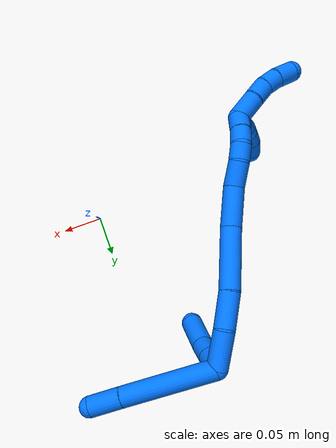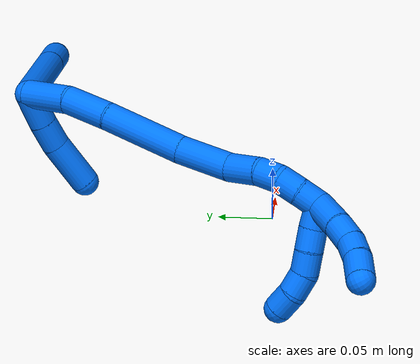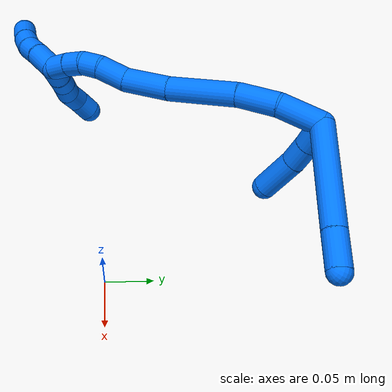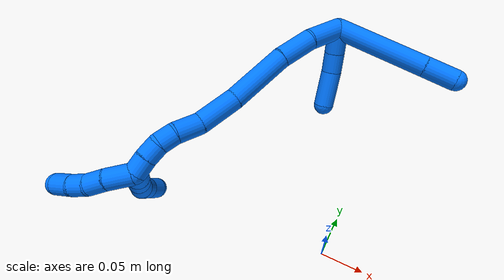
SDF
<sdf version="1.7">
 <world name="default">
  <model name="14">
   <static>0</static>
   <link name="14">
    <collision name="collision-cylinder-e_1_2_8">
     <pose>-0.023493 0.050039 0.008525 -1.40206 -0.433465 0.36751</pose>
     <geometry><cylinder><radius>0.0125</radius><length>0.111866</length></cylinder></geometry>
     <surface>
      <friction><ode><mu>1.16</mu><mu2>1.16</mu2><slip1>0</slip1><slip2>0</slip2></ode></friction>
      <contact><ode><kp>1e+06</kp><kd>1</kd><max_vel>0</max_vel><min_depth>0.001</min_depth></ode></contact>
     </surface>
    </collision>
    <visual name="visual-cylinder-e_1_2_8">
     <pose>-0.023493 0.050039 0.008525 -1.40206 -0.433465 0.36751</pose>
     <geometry><cylinder><radius>0.0125</radius><length>0.111866</length></cylinder></geometry>
     <material><ambient>0 0.462745 1 1</ambient></material>
    </visual>
    <collision name="collision-cylinder-e_2_8_6">
     <pose>-0.055069 0.117042 0.020284 -1.38235 -0.437771 0.363999</pose>
     <geometry><cylinder><radius>0.0125</radius><length>0.038134</length></cylinder></geometry>
     <surface>
      <friction><ode><mu>1.16</mu><mu2>1.16</mu2><slip1>0</slip1><slip2>0</slip2></ode></friction>
      <contact><ode><kp>1e+06</kp><kd>1</kd><max_vel>0</max_vel><min_depth>0.001</min_depth></ode></contact>
     </surface>
    </collision>
    <visual name="visual-cylinder-e_2_8_6">
     <pose>-0.055069 0.117042 0.020284 -1.38235 -0.437771 0.363999</pose>
     <geometry><cylinder><radius>0.0125</radius><length>0.038134</length></cylinder></geometry>
     <material><ambient>0 0.462745 1 1</ambient></material>
    </visual>
    <collision name="collision-cylinder-e_1_2_9">
     <pose>-0.01446 -0.003356 0.002934 0.852422 -1.27178 -0.646793</pose>
     <geometry><cylinder><radius>0.0125</radius><length>0.030264</length></cylinder></geometry>
     <surface>
      <friction><ode><mu>1.16</mu><mu2>1.16</mu2><slip1>0</slip1><slip2>0</slip2></ode></friction>
      <contact><ode><kp>1e+06</kp><kd>1</kd><max_vel>0</max_vel><min_depth>0.001</min_depth></ode></contact>
     </surface>
    </collision>
    <visual name="visual-cylinder-e_1_2_9">
     <pose>-0.01446 -0.003356 0.002934 0.852422 -1.27178 -0.646793</pose>
     <geometry><cylinder><radius>0.0125</radius><length>0.030264</length></cylinder></geometry>
     <material><ambient>0 0.462745 1 1</ambient></material>
    </visual>
    <collision name="collision-cylinder-e_2_9_10">
     <pose>-0.041004 -0.009399 0.007375 1.05949 -1.32117 -0.854033</pose>
     <geometry><cylinder><radius>0.0125</radius><length>0.024939</length></cylinder></geometry>
     <surface>
      <friction><ode><mu>1.16</mu><mu2>1.16</mu2><slip1>0</slip1><slip2>0</slip2></ode></friction>
      <contact><ode><kp>1e+06</kp><kd>1</kd><max_vel>0</max_vel><min_depth>0.001</min_depth></ode></contact>
     </surface>
    </collision>
    <visual name="visual-cylinder-e_2_9_10">
     <pose>-0.041004 -0.009399 0.007375 1.05949 -1.32117 -0.854033</pose>
     <geometry><cylinder><radius>0.0125</radius><length>0.024939</length></cylinder></geometry>
     <material><ambient>0 0.462745 1 1</ambient></material>
    </visual>
    <collision name="collision-cylinder-e_3_10_5">
     <pose>-0.074866 -0.01728 0.008259 1.69027 -1.33503 -1.45285</pose>
     <geometry><cylinder><radius>0.0125</radius><length>0.044797</length></cylinder></geometry>
     <surface>
      <friction><ode><mu>1.16</mu><mu2>1.16</mu2><slip1>0</slip1><slip2>0</slip2></ode></friction>
      <contact><ode><kp>1e+06</kp><kd>1</kd><max_vel>0</max_vel><min_depth>0.001</min_depth></ode></contact>
     </surface>
    </collision>
    <visual name="visual-cylinder-e_3_10_5">
     <pose>-0.074866 -0.01728 0.008259 1.69027 -1.33503 -1.45285</pose>
     <geometry><cylinder><radius>0.0125</radius><length>0.044797</length></cylinder></geometry>
     <material><ambient>0 0.462745 1 1</ambient></material>
    </visual>
    <collision name="collision-cylinder-e_1_2_11">
     <pose>-0.005548 -0.011106 -0.018452 2.59979 -0.252141 -0.85625</pose>
     <geometry><cylinder><radius>0.0125</radius><length>0.044479</length></cylinder></geometry>
     <surface>
      <friction><ode><mu>1.16</mu><mu2>1.16</mu2><slip1>0</slip1><slip2>0</slip2></ode></friction>
      <contact><ode><kp>1e+06</kp><kd>1</kd><max_vel>0</max_vel><min_depth>0.001</min_depth></ode></contact>
     </surface>
    </collision>
    <visual name="visual-cylinder-e_1_2_11">
     <pose>-0.005548 -0.011106 -0.018452 2.59979 -0.252141 -0.85625</pose>
     <geometry><cylinder><radius>0.0125</radius><length>0.044479</length></cylinder></geometry>
     <material><ambient>0 0.462745 1 1</ambient></material>
    </visual>
    <collision name="collision-cylinder-e_2_11_12">
     <pose>-0.020498 -0.034025 -0.051777 2.47037 -0.459601 -1.18153</pose>
     <geometry><cylinder><radius>0.0125</radius><length>0.042386</length></cylinder></geometry>
     <surface>
      <friction><ode><mu>1.16</mu><mu2>1.16</mu2><slip1>0</slip1><slip2>0</slip2></ode></friction>
      <contact><ode><kp>1e+06</kp><kd>1</kd><max_vel>0</max_vel><min_depth>0.001</min_depth></ode></contact>
     </surface>
    </collision>
    <visual name="visual-cylinder-e_2_11_12">
     <pose>-0.020498 -0.034025 -0.051777 2.47037 -0.459601 -1.18153</pose>
     <geometry><cylinder><radius>0.0125</radius><length>0.042386</length></cylinder></geometry>
     <material><ambient>0 0.462745 1 1</ambient></material>
    </visual>
    <collision name="collision-cylinder-e_3_12_13">
     <pose>-0.050878 -0.063906 -0.09096 2.50245 -0.605773 -1.51357</pose>
     <geometry><cylinder><radius>0.0125</radius><length>0.07369</length></cylinder></geometry>
     <surface>
      <friction><ode><mu>1.16</mu><mu2>1.16</mu2><slip1>0</slip1><slip2>0</slip2></ode></friction>
      <contact><ode><kp>1e+06</kp><kd>1</kd><max_vel>0</max_vel><min_depth>0.001</min_depth></ode></contact>
     </surface>
    </collision>
    <visual name="visual-cylinder-e_3_12_13">
     <pose>-0.050878 -0.063906 -0.09096 2.50245 -0.605773 -1.51357</pose>
     <geometry><cylinder><radius>0.0125</radius><length>0.07369</length></cylinder></geometry>
     <material><ambient>0 0.462745 1 1</ambient></material>
    </visual>
    <collision name="collision-cylinder-e_4_13_14">
     <pose>-0.083252 -0.094035 -0.132943 2.54268 -0.489354 -1.36006</pose>
     <geometry><cylinder><radius>0.0125</radius><length>0.048484</length></cylinder></geometry>
     <surface>
      <friction><ode><mu>1.16</mu><mu2>1.16</mu2><slip1>0</slip1><slip2>0</slip2></ode></friction>
      <contact><ode><kp>1e+06</kp><kd>1</kd><max_vel>0</max_vel><min_depth>0.001</min_depth></ode></contact>
     </surface>
    </collision>
    <visual name="visual-cylinder-e_4_13_14">
     <pose>-0.083252 -0.094035 -0.132943 2.54268 -0.489354 -1.36006</pose>
     <geometry><cylinder><radius>0.0125</radius><length>0.048484</length></cylinder></geometry>
     <material><ambient>0 0.462745 1 1</ambient></material>
    </visual>
    <collision name="collision-cylinder-e_5_14_15">
     <pose>-0.097975 -0.113732 -0.16333 2.60083 -0.220731 -0.760694</pose>
     <geometry><cylinder><radius>0.0125</radius><length>0.030399</length></cylinder></geometry>
     <surface>
      <friction><ode><mu>1.16</mu><mu2>1.16</mu2><slip1>0</slip1><slip2>0</slip2></ode></friction>
      <contact><ode><kp>1e+06</kp><kd>1</kd><max_vel>0</max_vel><min_depth>0.001</min_depth></ode></contact>
     </surface>
    </collision>
    <visual name="visual-cylinder-e_5_14_15">
     <pose>-0.097975 -0.113732 -0.16333 2.60083 -0.220731 -0.760694</pose>
     <geometry><cylinder><radius>0.0125</radius><length>0.030399</length></cylinder></geometry>
     <material><ambient>0 0.462745 1 1</ambient></material>
    </visual>
    <collision name="collision-cylinder-e_6_15_16">
     <pose>-0.105742 -0.12671 -0.18337 2.51145 -0.455261 -1.23578</pose>
     <geometry><cylinder><radius>0.0125</radius><length>0.020191</length></cylinder></geometry>
     <surface>
      <friction><ode><mu>1.16</mu><mu2>1.16</mu2><slip1>0</slip1><slip2>0</slip2></ode></friction>
      <contact><ode><kp>1e+06</kp><kd>1</kd><max_vel>0</max_vel><min_depth>0.001</min_depth></ode></contact>
     </surface>
    </collision>
    <visual name="visual-cylinder-e_6_15_16">
     <pose>-0.105742 -0.12671 -0.18337 2.51145 -0.455261 -1.23578</pose>
     <geometry><cylinder><radius>0.0125</radius><length>0.020191</length></cylinder></geometry>
     <material><ambient>0 0.462745 1 1</ambient></material>
    </visual>
    <collision name="collision-cylinder-e_7_16_17">
     <pose>-0.117049 -0.137095 -0.195935 2.37535 -0.756926 -1.5573</pose>
     <geometry><cylinder><radius>0.0125</radius><length>0.020004</length></cylinder></geometry>
     <surface>
      <friction><ode><mu>1.16</mu><mu2>1.16</mu2><slip1>0</slip1><slip2>0</slip2></ode></friction>
      <contact><ode><kp>1e+06</kp><kd>1</kd><max_vel>0</max_vel><min_depth>0.001</min_depth></ode></contact>
     </surface>
    </collision>
    <visual name="visual-cylinder-e_7_16_17">
     <pose>-0.117049 -0.137095 -0.195935 2.37535 -0.756926 -1.5573</pose>
     <geometry><cylinder><radius>0.0125</radius><length>0.020004</length></cylinder></geometry>
     <material><ambient>0 0.462745 1 1</ambient></material>
    </visual>
    <collision name="collision-cylinder-e_8_17_1">
     <pose>-0.13174 -0.146551 -0.205973 2.39795 -0.875943 -1.75286</pose>
     <geometry><cylinder><radius>0.0125</radius><length>0.020367</length></cylinder></geometry>
     <surface>
      <friction><ode><mu>1.16</mu><mu2>1.16</mu2><slip1>0</slip1><slip2>0</slip2></ode></friction>
      <contact><ode><kp>1e+06</kp><kd>1</kd><max_vel>0</max_vel><min_depth>0.001</min_depth></ode></contact>
     </surface>
    </collision>
    <visual name="visual-cylinder-e_8_17_1">
     <pose>-0.13174 -0.146551 -0.205973 2.39795 -0.875943 -1.75286</pose>
     <geometry><cylinder><radius>0.0125</radius><length>0.020367</length></cylinder></geometry>
     <material><ambient>0 0.462745 1 1</ambient></material>
    </visual>
    <collision name="collision-cylinder-e_1_1_18">
     <pose>-0.145084 -0.155805 -0.203983 0.619291 -0.584896 -0.192061</pose>
     <geometry><cylinder><radius>0.0125</radius><length>0.02</length></cylinder></geometry>
     <surface>
      <friction><ode><mu>1.16</mu><mu2>1.16</mu2><slip1>0</slip1><slip2>0</slip2></ode></friction>
      <contact><ode><kp>1e+06</kp><kd>1</kd><max_vel>0</max_vel><min_depth>0.001</min_depth></ode></contact>
     </surface>
    </collision>
    <visual name="visual-cylinder-e_1_1_18">
     <pose>-0.145084 -0.155805 -0.203983 0.619291 -0.584896 -0.192061</pose>
     <geometry><cylinder><radius>0.0125</radius><length>0.02</length></cylinder></geometry>
     <material><ambient>0 0.462745 1 1</ambient></material>
    </visual>
    <collision name="collision-cylinder-e_2_18_19">
     <pose>-0.156152 -0.166422 -0.191206 0.767573 -0.588046 -0.243339</pose>
     <geometry><cylinder><radius>0.0125</radius><length>0.02</length></cylinder></geometry>
     <surface>
      <friction><ode><mu>1.16</mu><mu2>1.16</mu2><slip1>0</slip1><slip2>0</slip2></ode></friction>
      <contact><ode><kp>1e+06</kp><kd>1</kd><max_vel>0</max_vel><min_depth>0.001</min_depth></ode></contact>
     </surface>
    </collision>
    <visual name="visual-cylinder-e_2_18_19">
     <pose>-0.156152 -0.166422 -0.191206 0.767573 -0.588046 -0.243339</pose>
     <geometry><cylinder><radius>0.0125</radius><length>0.02</length></cylinder></geometry>
     <material><ambient>0 0.462745 1 1</ambient></material>
    </visual>
    <collision name="collision-cylinder-e_3_19_20">
     <pose>-0.167736 -0.177102 -0.178932 0.662259 -0.648052 -0.229913</pose>
     <geometry><cylinder><radius>0.0125</radius><length>0.02</length></cylinder></geometry>
     <surface>
      <friction><ode><mu>1.16</mu><mu2>1.16</mu2><slip1>0</slip1><slip2>0</slip2></ode></friction>
      <contact><ode><kp>1e+06</kp><kd>1</kd><max_vel>0</max_vel><min_depth>0.001</min_depth></ode></contact>
     </surface>
    </collision>
    <visual name="visual-cylinder-e_3_19_20">
     <pose>-0.167736 -0.177102 -0.178932 0.662259 -0.648052 -0.229913</pose>
     <geometry><cylinder><radius>0.0125</radius><length>0.02</length></cylinder></geometry>
     <material><ambient>0 0.462745 1 1</ambient></material>
    </visual>
    <collision name="collision-cylinder-e_4_20_21">
     <pose>-0.177322 -0.185975 -0.164181 0.438687 -0.362866 -0.081748</pose>
     <geometry><cylinder><radius>0.0125</radius><length>0.02</length></cylinder></geometry>
     <surface>
      <friction><ode><mu>1.16</mu><mu2>1.16</mu2><slip1>0</slip1><slip2>0</slip2></ode></friction>
      <contact><ode><kp>1e+06</kp><kd>1</kd><max_vel>0</max_vel><min_depth>0.001</min_depth></ode></contact>
     </surface>
    </collision>
    <visual name="visual-cylinder-e_4_20_21">
     <pose>-0.177322 -0.185975 -0.164181 0.438687 -0.362866 -0.081748</pose>
     <geometry><cylinder><radius>0.0125</radius><length>0.02</length></cylinder></geometry>
     <material><ambient>0 0.462745 1 1</ambient></material>
    </visual>
    <collision name="collision-cylinder-e_5_21_4">
     <pose>-0.184135 -0.191133 -0.14634 0.12593 -0.332389 -0.021151</pose>
     <geometry><cylinder><radius>0.0125</radius><length>0.02</length></cylinder></geometry>
     <surface>
      <friction><ode><mu>1.16</mu><mu2>1.16</mu2><slip1>0</slip1><slip2>0</slip2></ode></friction>
      <contact><ode><kp>1e+06</kp><kd>1</kd><max_vel>0</max_vel><min_depth>0.001</min_depth></ode></contact>
     </surface>
    </collision>
    <visual name="visual-cylinder-e_5_21_4">
     <pose>-0.184135 -0.191133 -0.14634 0.12593 -0.332389 -0.021151</pose>
     <geometry><cylinder><radius>0.0125</radius><length>0.02</length></cylinder></geometry>
     <material><ambient>0 0.462745 1 1</ambient></material>
    </visual>
    <collision name="collision-cylinder-e_1_1_22">
     <pose>-0.142549 -0.165165 -0.217744 2.02717 -0.18655 -0.298047</pose>
     <geometry><cylinder><radius>0.0125</radius><length>0.032197</length></cylinder></geometry>
     <surface>
      <friction><ode><mu>1.16</mu><mu2>1.16</mu2><slip1>0</slip1><slip2>0</slip2></ode></friction>
      <contact><ode><kp>1e+06</kp><kd>1</kd><max_vel>0</max_vel><min_depth>0.001</min_depth></ode></contact>
     </surface>
    </collision>
    <visual name="visual-cylinder-e_1_1_22">
     <pose>-0.142549 -0.165165 -0.217744 2.02717 -0.18655 -0.298047</pose>
     <geometry><cylinder><radius>0.0125</radius><length>0.032197</length></cylinder></geometry>
     <material><ambient>0 0.462745 1 1</ambient></material>
    </visual>
    <collision name="collision-cylinder-e_2_22_23">
     <pose>-0.148589 -0.189327 -0.228691 1.95052 -0.277493 -0.406479</pose>
     <geometry><cylinder><radius>0.0125</radius><length>0.022304</length></cylinder></geometry>
     <surface>
      <friction><ode><mu>1.16</mu><mu2>1.16</mu2><slip1>0</slip1><slip2>0</slip2></ode></friction>
      <contact><ode><kp>1e+06</kp><kd>1</kd><max_vel>0</max_vel><min_depth>0.001</min_depth></ode></contact>
     </surface>
    </collision>
    <visual name="visual-cylinder-e_2_22_23">
     <pose>-0.148589 -0.189327 -0.228691 1.95052 -0.277493 -0.406479</pose>
     <geometry><cylinder><radius>0.0125</radius><length>0.022304</length></cylinder></geometry>
     <material><ambient>0 0.462745 1 1</ambient></material>
    </visual>
    <collision name="collision-cylinder-e_3_23_24">
     <pose>-0.152788 -0.209318 -0.234666 1.76762 -0.111334 -0.135658</pose>
     <geometry><cylinder><radius>0.0125</radius><length>0.020582</length></cylinder></geometry>
     <surface>
      <friction><ode><mu>1.16</mu><mu2>1.16</mu2><slip1>0</slip1><slip2>0</slip2></ode></friction>
      <contact><ode><kp>1e+06</kp><kd>1</kd><max_vel>0</max_vel><min_depth>0.001</min_depth></ode></contact>
     </surface>
    </collision>
    <visual name="visual-cylinder-e_3_23_24">
     <pose>-0.152788 -0.209318 -0.234666 1.76762 -0.111334 -0.135658</pose>
     <geometry><cylinder><radius>0.0125</radius><length>0.020582</length></cylinder></geometry>
     <material><ambient>0 0.462745 1 1</ambient></material>
    </visual>
    <collision name="collision-cylinder-e_4_24_3">
     <pose>-0.154717 -0.231774 -0.237097 1.60546 -0.063108 -0.065333</pose>
     <geometry><cylinder><radius>0.0125</radius><length>0.024917</length></cylinder></geometry>
     <surface>
      <friction><ode><mu>1.16</mu><mu2>1.16</mu2><slip1>0</slip1><slip2>0</slip2></ode></friction>
      <contact><ode><kp>1e+06</kp><kd>1</kd><max_vel>0</max_vel><min_depth>0.001</min_depth></ode></contact>
     </surface>
    </collision>
    <visual name="visual-cylinder-e_4_24_3">
     <pose>-0.154717 -0.231774 -0.237097 1.60546 -0.063108 -0.065333</pose>
     <geometry><cylinder><radius>0.0125</radius><length>0.024917</length></cylinder></geometry>
     <material><ambient>0 0.462745 1 1</ambient></material>
    </visual>
    <collision name="collision-sphere-3">
     <pose>-0.155503 -0.2442 -0.237528 0 -0 0</pose>
     <geometry><sphere><radius>0.0125</radius></sphere></geometry>
     <surface>
      <friction><ode><mu>1.16</mu><mu2>1.16</mu2><slip1>0</slip1><slip2>0</slip2></ode></friction>
      <contact><ode><kp>1e+06</kp><kd>1</kd><max_vel>0</max_vel><min_depth>0.001</min_depth></ode></contact>
     </surface>
    </collision>
    <visual name="visual-sphere-3">
     <pose>-0.155503 -0.2442 -0.237528 0 -0 0</pose>
     <geometry><sphere><radius>0.0125</radius></sphere></geometry>
     <material><ambient>0 0.462745 1 1</ambient></material>
    </visual>
    <collision name="collision-sphere-24">
     <pose>-0.153931 -0.219347 -0.236666 0 -0 0</pose>
     <geometry><sphere><radius>0.0125</radius></sphere></geometry>
     <surface>
      <friction><ode><mu>1.16</mu><mu2>1.16</mu2><slip1>0</slip1><slip2>0</slip2></ode></friction>
      <contact><ode><kp>1e+06</kp><kd>1</kd><max_vel>0</max_vel><min_depth>0.001</min_depth></ode></contact>
     </surface>
    </collision>
    <visual name="visual-sphere-24">
     <pose>-0.153931 -0.219347 -0.236666 0 -0 0</pose>
     <geometry><sphere><radius>0.0125</radius></sphere></geometry>
     <material><ambient>0 0.462745 1 1</ambient></material>
    </visual>
    <collision name="collision-sphere-23">
     <pose>-0.151644 -0.199288 -0.232666 0 -0 0</pose>
     <geometry><sphere><radius>0.0125</radius></sphere></geometry>
     <surface>
      <friction><ode><mu>1.16</mu><mu2>1.16</mu2><slip1>0</slip1><slip2>0</slip2></ode></friction>
      <contact><ode><kp>1e+06</kp><kd>1</kd><max_vel>0</max_vel><min_depth>0.001</min_depth></ode></contact>
     </surface>
    </collision>
    <visual name="visual-sphere-23">
     <pose>-0.151644 -0.199288 -0.232666 0 -0 0</pose>
     <geometry><sphere><radius>0.0125</radius></sphere></geometry>
     <material><ambient>0 0.462745 1 1</ambient></material>
    </visual>
    <collision name="collision-sphere-22">
     <pose>-0.145534 -0.179365 -0.224715 0 -0 0</pose>
     <geometry><sphere><radius>0.0125</radius></sphere></geometry>
     <surface>
      <friction><ode><mu>1.16</mu><mu2>1.16</mu2><slip1>0</slip1><slip2>0</slip2></ode></friction>
      <contact><ode><kp>1e+06</kp><kd>1</kd><max_vel>0</max_vel><min_depth>0.001</min_depth></ode></contact>
     </surface>
    </collision>
    <visual name="visual-sphere-22">
     <pose>-0.145534 -0.179365 -0.224715 0 -0 0</pose>
     <geometry><sphere><radius>0.0125</radius></sphere></geometry>
     <material><ambient>0 0.462745 1 1</ambient></material>
    </visual>
    <collision name="collision-sphere-4">
     <pose>-0.187398 -0.19232 -0.136962 0 -0 0</pose>
     <geometry><sphere><radius>0.0125</radius></sphere></geometry>
     <surface>
      <friction><ode><mu>1.16</mu><mu2>1.16</mu2><slip1>0</slip1><slip2>0</slip2></ode></friction>
      <contact><ode><kp>1e+06</kp><kd>1</kd><max_vel>0</max_vel><min_depth>0.001</min_depth></ode></contact>
     </surface>
    </collision>
    <visual name="visual-sphere-4">
     <pose>-0.187398 -0.19232 -0.136962 0 -0 0</pose>
     <geometry><sphere><radius>0.0125</radius></sphere></geometry>
     <material><ambient>0 0.462745 1 1</ambient></material>
    </visual>
    <collision name="collision-sphere-21">
     <pose>-0.180872 -0.189946 -0.155718 0 -0 0</pose>
     <geometry><sphere><radius>0.0125</radius></sphere></geometry>
     <surface>
      <friction><ode><mu>1.16</mu><mu2>1.16</mu2><slip1>0</slip1><slip2>0</slip2></ode></friction>
      <contact><ode><kp>1e+06</kp><kd>1</kd><max_vel>0</max_vel><min_depth>0.001</min_depth></ode></contact>
     </surface>
    </collision>
    <visual name="visual-sphere-21">
     <pose>-0.180872 -0.189946 -0.155718 0 -0 0</pose>
     <geometry><sphere><radius>0.0125</radius></sphere></geometry>
     <material><ambient>0 0.462745 1 1</ambient></material>
    </visual>
    <collision name="collision-sphere-20">
     <pose>-0.173773 -0.182004 -0.172645 0 -0 0</pose>
     <geometry><sphere><radius>0.0125</radius></sphere></geometry>
     <surface>
      <friction><ode><mu>1.16</mu><mu2>1.16</mu2><slip1>0</slip1><slip2>0</slip2></ode></friction>
      <contact><ode><kp>1e+06</kp><kd>1</kd><max_vel>0</max_vel><min_depth>0.001</min_depth></ode></contact>
     </surface>
    </collision>
    <visual name="visual-sphere-20">
     <pose>-0.173773 -0.182004 -0.172645 0 -0 0</pose>
     <geometry><sphere><radius>0.0125</radius></sphere></geometry>
     <material><ambient>0 0.462745 1 1</ambient></material>
    </visual>
    <collision name="collision-sphere-5">
     <pose>-0.096645 -0.022475 0.007635 0 -0 0</pose>
     <geometry><sphere><radius>0.0125</radius></sphere></geometry>
     <surface>
      <friction><ode><mu>1.16</mu><mu2>1.16</mu2><slip1>0</slip1><slip2>0</slip2></ode></friction>
      <contact><ode><kp>1e+06</kp><kd>1</kd><max_vel>0</max_vel><min_depth>0.001</min_depth></ode></contact>
     </surface>
    </collision>
    <visual name="visual-sphere-5">
     <pose>-0.096645 -0.022475 0.007635 0 -0 0</pose>
     <geometry><sphere><radius>0.0125</radius></sphere></geometry>
     <material><ambient>0 0.462745 1 1</ambient></material>
    </visual>
    <collision name="collision-sphere-10">
     <pose>-0.053087 -0.012085 0.008882 0 -0 0</pose>
     <geometry><sphere><radius>0.0125</radius></sphere></geometry>
     <surface>
      <friction><ode><mu>1.16</mu><mu2>1.16</mu2><slip1>0</slip1><slip2>0</slip2></ode></friction>
      <contact><ode><kp>1e+06</kp><kd>1</kd><max_vel>0</max_vel><min_depth>0.001</min_depth></ode></contact>
     </surface>
    </collision>
    <visual name="visual-sphere-10">
     <pose>-0.053087 -0.012085 0.008882 0 -0 0</pose>
     <geometry><sphere><radius>0.0125</radius></sphere></geometry>
     <material><ambient>0 0.462745 1 1</ambient></material>
    </visual>
    <collision name="collision-sphere-6">
     <pose>-0.063152 0.134005 0.023519 0 -0 0</pose>
     <geometry><sphere><radius>0.0125</radius></sphere></geometry>
     <surface>
      <friction><ode><mu>1.16</mu><mu2>1.16</mu2><slip1>0</slip1><slip2>0</slip2></ode></friction>
      <contact><ode><kp>1e+06</kp><kd>1</kd><max_vel>0</max_vel><min_depth>0.001</min_depth></ode></contact>
     </surface>
    </collision>
    <visual name="visual-sphere-6">
     <pose>-0.063152 0.134005 0.023519 0 -0 0</pose>
     <geometry><sphere><radius>0.0125</radius></sphere></geometry>
     <material><ambient>0 0.462745 1 1</ambient></material>
    </visual>
    <collision name="collision-sphere-9">
     <pose>-0.028921 -0.006712 0.005868 0 -0 0</pose>
     <geometry><sphere><radius>0.0125</radius></sphere></geometry>
     <surface>
      <friction><ode><mu>1.16</mu><mu2>1.16</mu2><slip1>0</slip1><slip2>0</slip2></ode></friction>
      <contact><ode><kp>1e+06</kp><kd>1</kd><max_vel>0</max_vel><min_depth>0.001</min_depth></ode></contact>
     </surface>
    </collision>
    <visual name="visual-sphere-9">
     <pose>-0.028921 -0.006712 0.005868 0 -0 0</pose>
     <geometry><sphere><radius>0.0125</radius></sphere></geometry>
     <material><ambient>0 0.462745 1 1</ambient></material>
    </visual>
    <collision name="collision-sphere-2">
     <geometry><sphere><radius>0.0125</radius></sphere></geometry>
     <surface>
      <friction><ode><mu>1.16</mu><mu2>1.16</mu2><slip1>0</slip1><slip2>0</slip2></ode></friction>
      <contact><ode><kp>1e+06</kp><kd>1</kd><max_vel>0</max_vel><min_depth>0.001</min_depth></ode></contact>
     </surface>
    </collision>
    <visual name="visual-sphere-2">
     <geometry><sphere><radius>0.0125</radius></sphere></geometry>
     <material><ambient>0 0.462745 1 1</ambient></material>
    </visual>
    <collision name="collision-sphere-19">
     <pose>-0.1617 -0.172199 -0.185219 0 -0 0</pose>
     <geometry><sphere><radius>0.0125</radius></sphere></geometry>
     <surface>
      <friction><ode><mu>1.16</mu><mu2>1.16</mu2><slip1>0</slip1><slip2>0</slip2></ode></friction>
      <contact><ode><kp>1e+06</kp><kd>1</kd><max_vel>0</max_vel><min_depth>0.001</min_depth></ode></contact>
     </surface>
    </collision>
    <visual name="visual-sphere-19">
     <pose>-0.1617 -0.172199 -0.185219 0 -0 0</pose>
     <geometry><sphere><radius>0.0125</radius></sphere></geometry>
     <material><ambient>0 0.462745 1 1</ambient></material>
    </visual>
    <collision name="collision-sphere-8">
     <pose>-0.046986 0.100078 0.017049 0 -0 0</pose>
     <geometry><sphere><radius>0.0125</radius></sphere></geometry>
     <surface>
      <friction><ode><mu>1.16</mu><mu2>1.16</mu2><slip1>0</slip1><slip2>0</slip2></ode></friction>
      <contact><ode><kp>1e+06</kp><kd>1</kd><max_vel>0</max_vel><min_depth>0.001</min_depth></ode></contact>
     </surface>
    </collision>
    <visual name="visual-sphere-8">
     <pose>-0.046986 0.100078 0.017049 0 -0 0</pose>
     <geometry><sphere><radius>0.0125</radius></sphere></geometry>
     <material><ambient>0 0.462745 1 1</ambient></material>
    </visual>
    <collision name="collision-sphere-11">
     <pose>-0.011097 -0.022212 -0.036904 0 -0 0</pose>
     <geometry><sphere><radius>0.0125</radius></sphere></geometry>
     <surface>
      <friction><ode><mu>1.16</mu><mu2>1.16</mu2><slip1>0</slip1><slip2>0</slip2></ode></friction>
      <contact><ode><kp>1e+06</kp><kd>1</kd><max_vel>0</max_vel><min_depth>0.001</min_depth></ode></contact>
     </surface>
    </collision>
    <visual name="visual-sphere-11">
     <pose>-0.011097 -0.022212 -0.036904 0 -0 0</pose>
     <geometry><sphere><radius>0.0125</radius></sphere></geometry>
     <material><ambient>0 0.462745 1 1</ambient></material>
    </visual>
    <collision name="collision-sphere-12">
     <pose>-0.029899 -0.045838 -0.06665 0 -0 0</pose>
     <geometry><sphere><radius>0.0125</radius></sphere></geometry>
     <surface>
      <friction><ode><mu>1.16</mu><mu2>1.16</mu2><slip1>0</slip1><slip2>0</slip2></ode></friction>
      <contact><ode><kp>1e+06</kp><kd>1</kd><max_vel>0</max_vel><min_depth>0.001</min_depth></ode></contact>
     </surface>
    </collision>
    <visual name="visual-sphere-12">
     <pose>-0.029899 -0.045838 -0.06665 0 -0 0</pose>
     <geometry><sphere><radius>0.0125</radius></sphere></geometry>
     <material><ambient>0 0.462745 1 1</ambient></material>
    </visual>
    <collision name="collision-sphere-13">
     <pose>-0.071857 -0.081973 -0.11527 0 -0 0</pose>
     <geometry><sphere><radius>0.0125</radius></sphere></geometry>
     <surface>
      <friction><ode><mu>1.16</mu><mu2>1.16</mu2><slip1>0</slip1><slip2>0</slip2></ode></friction>
      <contact><ode><kp>1e+06</kp><kd>1</kd><max_vel>0</max_vel><min_depth>0.001</min_depth></ode></contact>
     </surface>
    </collision>
    <visual name="visual-sphere-13">
     <pose>-0.071857 -0.081973 -0.11527 0 -0 0</pose>
     <geometry><sphere><radius>0.0125</radius></sphere></geometry>
     <material><ambient>0 0.462745 1 1</ambient></material>
    </visual>
    <collision name="collision-sphere-14">
     <pose>-0.094647 -0.106098 -0.150615 0 -0 0</pose>
     <geometry><sphere><radius>0.0125</radius></sphere></geometry>
     <surface>
      <friction><ode><mu>1.16</mu><mu2>1.16</mu2><slip1>0</slip1><slip2>0</slip2></ode></friction>
      <contact><ode><kp>1e+06</kp><kd>1</kd><max_vel>0</max_vel><min_depth>0.001</min_depth></ode></contact>
     </surface>
    </collision>
    <visual name="visual-sphere-14">
     <pose>-0.094647 -0.106098 -0.150615 0 -0 0</pose>
     <geometry><sphere><radius>0.0125</radius></sphere></geometry>
     <material><ambient>0 0.462745 1 1</ambient></material>
    </visual>
    <collision name="collision-sphere-15">
     <pose>-0.101303 -0.121367 -0.176044 0 -0 0</pose>
     <geometry><sphere><radius>0.0125</radius></sphere></geometry>
     <surface>
      <friction><ode><mu>1.16</mu><mu2>1.16</mu2><slip1>0</slip1><slip2>0</slip2></ode></friction>
      <contact><ode><kp>1e+06</kp><kd>1</kd><max_vel>0</max_vel><min_depth>0.001</min_depth></ode></contact>
     </surface>
    </collision>
    <visual name="visual-sphere-15">
     <pose>-0.101303 -0.121367 -0.176044 0 -0 0</pose>
     <geometry><sphere><radius>0.0125</radius></sphere></geometry>
     <material><ambient>0 0.462745 1 1</ambient></material>
    </visual>
    <collision name="collision-sphere-16">
     <pose>-0.110181 -0.132053 -0.190696 0 -0 0</pose>
     <geometry><sphere><radius>0.0125</radius></sphere></geometry>
     <surface>
      <friction><ode><mu>1.16</mu><mu2>1.16</mu2><slip1>0</slip1><slip2>0</slip2></ode></friction>
      <contact><ode><kp>1e+06</kp><kd>1</kd><max_vel>0</max_vel><min_depth>0.001</min_depth></ode></contact>
     </surface>
    </collision>
    <visual name="visual-sphere-16">
     <pose>-0.110181 -0.132053 -0.190696 0 -0 0</pose>
     <geometry><sphere><radius>0.0125</radius></sphere></geometry>
     <material><ambient>0 0.462745 1 1</ambient></material>
    </visual>
    <collision name="collision-sphere-17">
     <pose>-0.123918 -0.142137 -0.201174 0 -0 0</pose>
     <geometry><sphere><radius>0.0125</radius></sphere></geometry>
     <surface>
      <friction><ode><mu>1.16</mu><mu2>1.16</mu2><slip1>0</slip1><slip2>0</slip2></ode></friction>
      <contact><ode><kp>1e+06</kp><kd>1</kd><max_vel>0</max_vel><min_depth>0.001</min_depth></ode></contact>
     </surface>
    </collision>
    <visual name="visual-sphere-17">
     <pose>-0.123918 -0.142137 -0.201174 0 -0 0</pose>
     <geometry><sphere><radius>0.0125</radius></sphere></geometry>
     <material><ambient>0 0.462745 1 1</ambient></material>
    </visual>
    <collision name="collision-sphere-1">
     <pose>-0.139563 -0.150965 -0.210772 0 -0 0</pose>
     <geometry><sphere><radius>0.0125</radius></sphere></geometry>
     <surface>
      <friction><ode><mu>1.16</mu><mu2>1.16</mu2><slip1>0</slip1><slip2>0</slip2></ode></friction>
      <contact><ode><kp>1e+06</kp><kd>1</kd><max_vel>0</max_vel><min_depth>0.001</min_depth></ode></contact>
     </surface>
    </collision>
    <visual name="visual-sphere-1">
     <pose>-0.139563 -0.150965 -0.210772 0 -0 0</pose>
     <geometry><sphere><radius>0.0125</radius></sphere></geometry>
     <material><ambient>0 0.462745 1 1</ambient></material>
    </visual>
    <collision name="collision-sphere-18">
     <pose>-0.150605 -0.160644 -0.197194 0 -0 0</pose>
     <geometry><sphere><radius>0.0125</radius></sphere></geometry>
     <surface>
      <friction><ode><mu>1.16</mu><mu2>1.16</mu2><slip1>0</slip1><slip2>0</slip2></ode></friction>
      <contact><ode><kp>1e+06</kp><kd>1</kd><max_vel>0</max_vel><min_depth>0.001</min_depth></ode></contact>
     </surface>
    </collision>
    <visual name="visual-sphere-18">
     <pose>-0.150605 -0.160644 -0.197194 0 -0 0</pose>
     <geometry><sphere><radius>0.0125</radius></sphere></geometry>
     <material><ambient>0 0.462745 1 1</ambient></material>
    </visual>
    <inertial>
     <pose>-0.080125 -0.068199 -0.094824 0 -0 0</pose>
     <mass>0.75</mass>
     <inertia><ixx>8.8e-05</ixx><ixy>0</ixy><ixz>0</ixz><iyy>2.7e-05</iyy><iyz>0</iyz><izz>3.6e-05</izz></inertia>
    </inertial>
   </link>
   <pose>-0.081698 0.213125 0.147719 2.58843 -0.893004 2.1012</pose>
  </model>
 </world>
</sdf>
